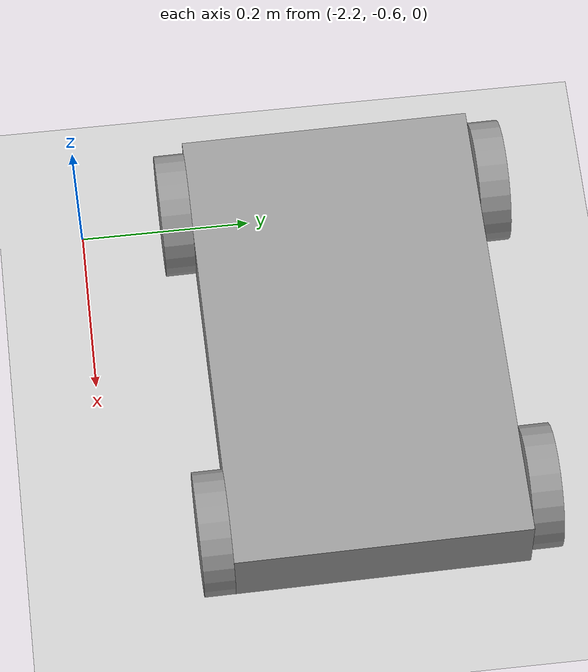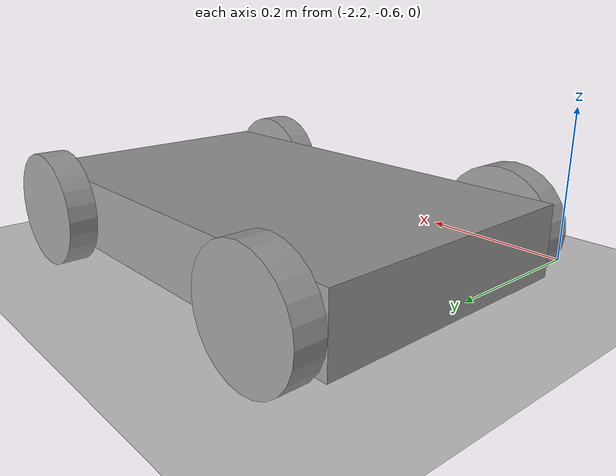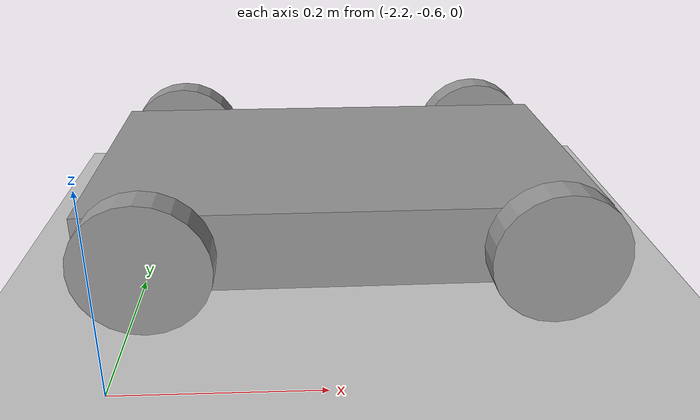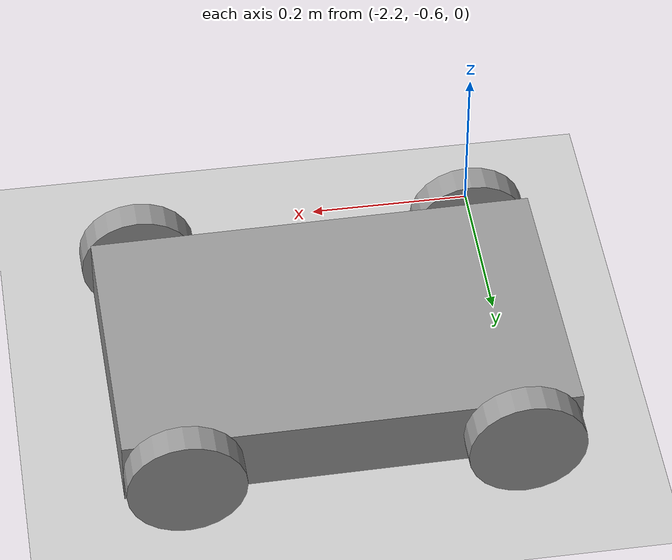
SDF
<sdf version="1.6">
 <world name="default">
  <model name="ground_plane">
   <static>1</static>
   <link name="link">
    <collision name="collision">
     <geometry><plane><normal>0 0 1</normal><size>100 100</size></plane></geometry>
     <surface>
      <contact><collide_bitmask>65535</collide_bitmask></contact>
      <friction><ode><mu>100</mu><mu2>50</mu2></ode></friction>
     </surface>
    </collision>
    <visual name="visual">
     <cast_shadows>0</cast_shadows>
     <geometry><plane><normal>0 0 1</normal><size>100 100</size></plane></geometry>
     <material>
      <script><uri>file://media/materials/scripts/gazebo.material</uri><name>Gazebo/Grey</name></script>
     </material>
    </visual>
   </link>
  </model>
  <model name="Myrobot">
   <link name="link_0">
    <pose>-0.002689 1e-06 0 0 -0 0</pose>
    <inertial>
     <mass>0.0159423</mass>
     <inertia>
      <ixx>0.00016276</ixx>
      <ixy>0</ixy>
      <ixz>0</ixz>
      <iyy>0.00040767</iyy>
      <iyz>0</iyz>
      <izz>0.00055086</izz>
     </inertia>
    </inertial>
    <visual name="visual">
     <geometry><box><size>0.547262 0.339328 0.085835</size></box></geometry>
     <material>
      <lighting>1</lighting>
      <script><uri>file://media/materials/scripts/gazebo.material</uri><name>Gazebo/Grey</name></script>
      <shader type="pixel"><normal_map>__default__</normal_map></shader>
      <ambient>0.3 0.3 0.3 1</ambient>
      <diffuse>0.7 0.7 0.7 1</diffuse>
      <specular>0.01 0.01 0.01 1</specular>
      <emissive>0 0 0 1</emissive>
     </material>
    </visual>
    <collision name="collision">
     <geometry><box><size>0.547262 0.339328 0.085835</size></box></geometry>
     <surface>
      <friction>
       <ode><mu>1</mu><mu2>1</mu2><fdir1>0 0 0</fdir1><slip1>0</slip1><slip2>0</slip2></ode>
       <torsional>
        <coefficient>1</coefficient>
        <patch_radius>0</patch_radius>
        <surface_radius>0</surface_radius>
        <use_patch_radius>1</use_patch_radius>
        <ode><slip>0</slip></ode>
       </torsional>
      </friction>
      <bounce><restitution_coefficient>0</restitution_coefficient><threshold>1e+06</threshold></bounce>
      <contact>
       <collide_without_contact>0</collide_without_contact>
       <collide_without_contact_bitmask>1</collide_without_contact_bitmask>
       <collide_bitmask>1</collide_bitmask>
       <ode>
        <soft_cfm>0</soft_cfm>
        <soft_erp>0.2</soft_erp>
        <kp>1e+13</kp>
        <kd>1</kd>
        <max_vel>0.01</max_vel>
        <min_depth>0</min_depth>
       </ode>
       <bullet>
        <split_impulse>1</split_impulse>
        <split_impulse_penetration_threshold>-0.01</split_impulse_penetration_threshold>
        <soft_cfm>0</soft_cfm>
        <soft_erp>0.2</soft_erp>
        <kp>1e+13</kp>
        <kd>1</kd>
       </bullet>
      </contact>
     </surface>
    </collision>
   </link>
   <link name="link_1">
    <pose>0.212103 -0.187488 0 1.5707 -0 0</pose>
    <inertial>
     <mass>0.000727163</mass>
     <inertia>
      <ixx>1.00456e-06</ixx>
      <ixy>0</ixy>
      <ixz>0</ixz>
      <iyy>1.00456e-06</iyy>
      <iyz>0</iyz>
      <izz>1.85534e-06</izz>
     </inertia>
    </inertial>
    <visual name="visual">
     <geometry><cylinder><radius>0.0714349</radius><length>0.0356226</length></cylinder></geometry>
     <material>
      <lighting>1</lighting>
      <script><uri>file://media/materials/scripts/gazebo.material</uri><name>Gazebo/Grey</name></script>
      <shader type="pixel"><normal_map>__default__</normal_map></shader>
      <ambient>0.3 0.3 0.3 1</ambient>
      <diffuse>0.7 0.7 0.7 1</diffuse>
      <specular>0.01 0.01 0.01 1</specular>
      <emissive>0 0 0 1</emissive>
     </material>
    </visual>
    <collision name="collision">
     <geometry><cylinder><radius>0.071435</radius><length>0.035623</length></cylinder></geometry>
     <surface>
      <friction>
       <ode><mu>1</mu><mu2>1</mu2><fdir1>0 0 0</fdir1><slip1>0</slip1><slip2>0</slip2></ode>
       <torsional>
        <coefficient>1</coefficient>
        <patch_radius>0</patch_radius>
        <surface_radius>0</surface_radius>
        <use_patch_radius>1</use_patch_radius>
        <ode><slip>0</slip></ode>
       </torsional>
      </friction>
      <bounce><restitution_coefficient>0</restitution_coefficient><threshold>1e+06</threshold></bounce>
      <contact>
       <collide_without_contact>0</collide_without_contact>
       <collide_without_contact_bitmask>1</collide_without_contact_bitmask>
       <collide_bitmask>1</collide_bitmask>
       <ode>
        <soft_cfm>0</soft_cfm>
        <soft_erp>0.2</soft_erp>
        <kp>1e+13</kp>
        <kd>1</kd>
        <max_vel>0.01</max_vel>
        <min_depth>0</min_depth>
       </ode>
       <bullet>
        <split_impulse>1</split_impulse>
        <split_impulse_penetration_threshold>-0.01</split_impulse_penetration_threshold>
        <soft_cfm>0</soft_cfm>
        <soft_erp>0.2</soft_erp>
        <kp>1e+13</kp>
        <kd>1</kd>
       </bullet>
      </contact>
     </surface>
    </collision>
   </link>
   <link name="link_1_clone">
    <pose>0.199507 0.187484 0 1.5707 -0 0</pose>
    <inertial>
     <mass>0.000727163</mass>
     <inertia>
      <ixx>1.00456e-06</ixx>
      <ixy>0</ixy>
      <ixz>0</ixz>
      <iyy>1.00456e-06</iyy>
      <iyz>0</iyz>
      <izz>1.85534e-06</izz>
     </inertia>
    </inertial>
    <visual name="visual">
     <geometry><cylinder><radius>0.0714349</radius><length>0.0356226</length></cylinder></geometry>
     <material>
      <lighting>1</lighting>
      <script><uri>file://media/materials/scripts/gazebo.material</uri><name>Gazebo/Grey</name></script>
      <shader type="pixel"><normal_map>__default__</normal_map></shader>
      <ambient>0.3 0.3 0.3 1</ambient>
      <diffuse>0.7 0.7 0.7 1</diffuse>
      <specular>0.01 0.01 0.01 1</specular>
      <emissive>0 0 0 1</emissive>
     </material>
    </visual>
    <collision name="collision">
     <geometry><cylinder><radius>0.071435</radius><length>0.035623</length></cylinder></geometry>
     <surface>
      <friction>
       <ode><mu>1</mu><mu2>1</mu2><fdir1>0 0 0</fdir1><slip1>0</slip1><slip2>0</slip2></ode>
       <torsional>
        <coefficient>1</coefficient>
        <patch_radius>0</patch_radius>
        <surface_radius>0</surface_radius>
        <use_patch_radius>1</use_patch_radius>
        <ode><slip>0</slip></ode>
       </torsional>
      </friction>
      <bounce><restitution_coefficient>0</restitution_coefficient><threshold>1e+06</threshold></bounce>
      <contact>
       <collide_without_contact>0</collide_without_contact>
       <collide_without_contact_bitmask>1</collide_without_contact_bitmask>
       <collide_bitmask>1</collide_bitmask>
       <ode>
        <soft_cfm>0</soft_cfm>
        <soft_erp>0.2</soft_erp>
        <kp>1e+13</kp>
        <kd>1</kd>
        <max_vel>0.01</max_vel>
        <min_depth>0</min_depth>
       </ode>
       <bullet>
        <split_impulse>1</split_impulse>
        <split_impulse_penetration_threshold>-0.01</split_impulse_penetration_threshold>
        <soft_cfm>0</soft_cfm>
        <soft_erp>0.2</soft_erp>
        <kp>1e+13</kp>
        <kd>1</kd>
       </bullet>
      </contact>
     </surface>
    </collision>
   </link>
   <link name="link_1_clone_0">
    <pose>-0.204885 -0.187481 0 1.5707 -0 0</pose>
    <inertial>
     <mass>0.00072716</mass>
     <inertia><ixx>1e-06</ixx><ixy>0</ixy><ixz>0</ixz><iyy>1e-06</iyy><iyz>0</iyz><izz>1.86e-06</izz></inertia>
    </inertial>
    <visual name="visual">
     <geometry><cylinder><radius>0.0714349</radius><length>0.0356226</length></cylinder></geometry>
     <material>
      <lighting>1</lighting>
      <script><uri>file://media/materials/scripts/gazebo.material</uri><name>Gazebo/Grey</name></script>
      <shader type="pixel"><normal_map>__default__</normal_map></shader>
      <ambient>0.3 0.3 0.3 1</ambient>
      <diffuse>0.7 0.7 0.7 1</diffuse>
      <specular>0.01 0.01 0.01 1</specular>
      <emissive>0 0 0 1</emissive>
     </material>
    </visual>
    <collision name="collision">
     <geometry><cylinder><radius>0.071435</radius><length>0.035623</length></cylinder></geometry>
     <surface>
      <friction>
       <ode><mu>1</mu><mu2>1</mu2><fdir1>0 0 0</fdir1><slip1>0</slip1><slip2>0</slip2></ode>
       <torsional>
        <coefficient>1</coefficient>
        <patch_radius>0</patch_radius>
        <surface_radius>0</surface_radius>
        <use_patch_radius>1</use_patch_radius>
        <ode><slip>0</slip></ode>
       </torsional>
      </friction>
      <bounce><restitution_coefficient>0</restitution_coefficient><threshold>1e+06</threshold></bounce>
      <contact>
       <collide_without_contact>0</collide_without_contact>
       <collide_without_contact_bitmask>1</collide_without_contact_bitmask>
       <collide_bitmask>1</collide_bitmask>
       <ode>
        <soft_cfm>0</soft_cfm>
        <soft_erp>0.2</soft_erp>
        <kp>1e+13</kp>
        <kd>1</kd>
        <max_vel>0.01</max_vel>
        <min_depth>0</min_depth>
       </ode>
       <bullet>
        <split_impulse>1</split_impulse>
        <split_impulse_penetration_threshold>-0.01</split_impulse_penetration_threshold>
        <soft_cfm>0</soft_cfm>
        <soft_erp>0.2</soft_erp>
        <kp>1e+13</kp>
        <kd>1</kd>
       </bullet>
      </contact>
     </surface>
    </collision>
   </link>
   <link name="link_1_clone_1">
    <pose>-0.204885 0.187484 0 1.5707 -0 0</pose>
    <inertial>
     <mass>0.000727163</mass>
     <inertia>
      <ixx>1.00456e-06</ixx>
      <ixy>0</ixy>
      <ixz>0</ixz>
      <iyy>1.00456e-06</iyy>
      <iyz>0</iyz>
      <izz>1.85534e-06</izz>
     </inertia>
    </inertial>
    <visual name="visual">
     <geometry><cylinder><radius>0.0714349</radius><length>0.0356226</length></cylinder></geometry>
     <material>
      <lighting>1</lighting>
      <script><uri>file://media/materials/scripts/gazebo.material</uri><name>Gazebo/Grey</name></script>
      <shader type="pixel"><normal_map>__default__</normal_map></shader>
      <ambient>0.3 0.3 0.3 1</ambient>
      <diffuse>0.7 0.7 0.7 1</diffuse>
      <specular>0.01 0.01 0.01 1</specular>
      <emissive>0 0 0 1</emissive>
     </material>
    </visual>
    <collision name="collision">
     <geometry><cylinder><radius>0.071435</radius><length>0.035623</length></cylinder></geometry>
     <surface>
      <friction>
       <ode><mu>1</mu><mu2>1</mu2><fdir1>0 0 0</fdir1><slip1>0</slip1><slip2>0</slip2></ode>
       <torsional>
        <coefficient>1</coefficient>
        <patch_radius>0</patch_radius>
        <surface_radius>0</surface_radius>
        <use_patch_radius>1</use_patch_radius>
        <ode><slip>0</slip></ode>
       </torsional>
      </friction>
      <bounce><restitution_coefficient>0</restitution_coefficient><threshold>1e+06</threshold></bounce>
      <contact>
       <collide_without_contact>0</collide_without_contact>
       <collide_without_contact_bitmask>1</collide_without_contact_bitmask>
       <collide_bitmask>1</collide_bitmask>
       <ode>
        <soft_cfm>0</soft_cfm>
        <soft_erp>0.2</soft_erp>
        <kp>1e+13</kp>
        <kd>1</kd>
        <max_vel>0.01</max_vel>
        <min_depth>0</min_depth>
       </ode>
       <bullet>
        <split_impulse>1</split_impulse>
        <split_impulse_penetration_threshold>-0.01</split_impulse_penetration_threshold>
        <soft_cfm>0</soft_cfm>
        <soft_erp>0.2</soft_erp>
        <kp>1e+13</kp>
        <kd>1</kd>
       </bullet>
      </contact>
     </surface>
    </collision>
   </link>
   <joint name="link_0_JOINT_1" type="revolute">
    <parent>link_0</parent>
    <child>link_1_clone_0</child>
    <axis>
     <xyz>0 0 1</xyz>
     <use_parent_model_frame>0</use_parent_model_frame>
     <limit>
      <lower>-1.79769e+308</lower>
      <upper>1.79769e+308</upper>
      <effort>-1</effort>
      <velocity>-1</velocity>
     </limit>
     <dynamics>
      <spring_reference>0</spring_reference>
      <spring_stiffness>0</spring_stiffness>
      <damping>0</damping>
     </dynamics>
    </axis>
    <physics>
     <ode><limit><cfm>0</cfm><erp>0.2</erp></limit><suspension><cfm>0</cfm><erp>0.2</erp></suspension></ode>
    </physics>
   </joint>
   <joint name="link_0_JOINT_2" type="revolute">
    <parent>link_0</parent>
    <child>link_1_clone</child>
    <axis>
     <xyz>0 0 1</xyz>
     <use_parent_model_frame>0</use_parent_model_frame>
     <limit>
      <lower>-1.79769e+308</lower>
      <upper>1.79769e+308</upper>
      <effort>-1</effort>
      <velocity>-1</velocity>
     </limit>
     <dynamics>
      <spring_reference>0</spring_reference>
      <spring_stiffness>0</spring_stiffness>
      <damping>0</damping>
     </dynamics>
    </axis>
    <physics>
     <ode><limit><cfm>0</cfm><erp>0.2</erp></limit><suspension><cfm>0</cfm><erp>0.2</erp></suspension></ode>
    </physics>
   </joint>
   <joint name="link_0_JOINT_3" type="revolute">
    <parent>link_0</parent>
    <child>link_1_clone_1</child>
    <axis>
     <xyz>0 0 1</xyz>
     <use_parent_model_frame>0</use_parent_model_frame>
     <limit>
      <lower>-1.79769e+308</lower>
      <upper>1.79769e+308</upper>
      <effort>-1</effort>
      <velocity>-1</velocity>
     </limit>
     <dynamics>
      <spring_reference>0</spring_reference>
      <spring_stiffness>0</spring_stiffness>
      <damping>0</damping>
     </dynamics>
    </axis>
    <physics>
     <ode><limit><cfm>0</cfm><erp>0.2</erp></limit><suspension><cfm>0</cfm><erp>0.2</erp></suspension></ode>
    </physics>
   </joint>
   <joint name="link_0_JOINT_4" type="revolute">
    <parent>link_0</parent>
    <child>link_1</child>
    <axis>
     <xyz>0 0 1</xyz>
     <use_parent_model_frame>0</use_parent_model_frame>
     <limit>
      <lower>-1.79769e+308</lower>
      <upper>1.79769e+308</upper>
      <effort>-1</effort>
      <velocity>-1</velocity>
     </limit>
     <dynamics>
      <spring_reference>0</spring_reference>
      <spring_stiffness>0</spring_stiffness>
      <damping>0</damping>
     </dynamics>
    </axis>
    <physics>
     <ode><limit><cfm>0</cfm><erp>0.2</erp></limit><suspension><cfm>0</cfm><erp>0.2</erp></suspension></ode>
    </physics>
   </joint>
   <static>0</static>
   <pose>-1.97835 -0.297669 0.071432 -2.1e-05 -0 0.012509</pose>
  </model>
 </world>
</sdf>
